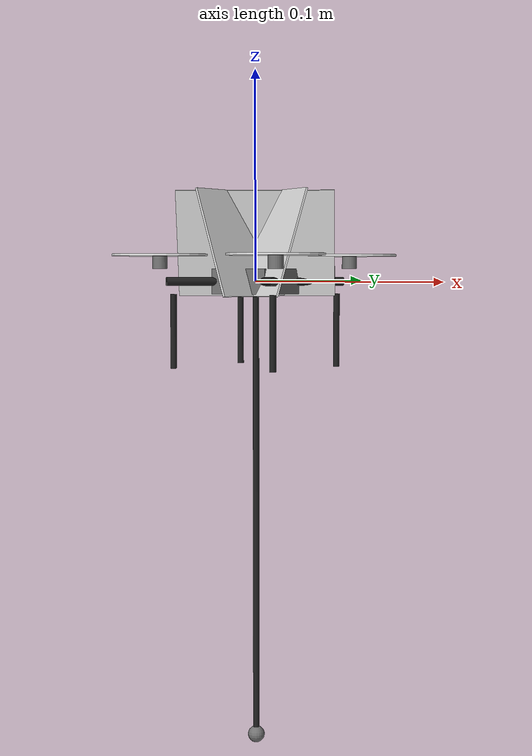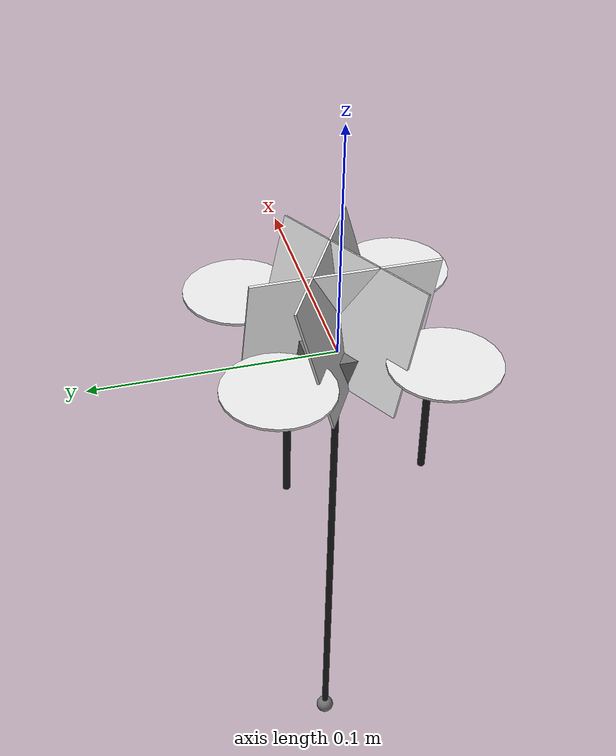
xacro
<?xml version="1.0"?>
<robot xmlns:xacro="http://www.ros.org/wiki/xacro" name="quadcopter">

  <!-- ============================== parameters ============================= -->
  <!-- Geometry (SI units) -->
  <xacro:property name="wheelbase_diag" value="0.092"/>
  <xacro:property name="arm_length" value="${wheelbase_diag / 2.0}"/>
  <xacro:property name="motor_xy" value="0.032527"/>
  <xacro:property name="body_x" value="0.030"/>
  <xacro:property name="body_y" value="0.030"/>
  <xacro:property name="body_z" value="0.012"/>
  <xacro:property name="motor_radius" value="0.0035"/>
  <xacro:property name="motor_height" value="0.006"/>
  <xacro:property name="prop_radius" value="0.0225"/>
  <xacro:property name="prop_thickness" value="0.001"/>
  <xacro:property name="leg_length" value="0.035"/>
  <xacro:property name="leg_radius" value="0.0015"/>
  <xacro:property name="arm_radius" value="0.002"/>
  <xacro:property name="motor_z" value="${body_z / 2.0 + motor_height / 2.0}"/>

  <!-- Hopcopter passive telescopic leg (paper Eq. 7 / table S2) -->
  <xacro:property name="leg_length0" value="0.22"/>
  <xacro:property name="leg_preload" value="0.0197"/>
  <xacro:property name="mass_total" value="0.0348"/>
  <xacro:property name="foot_mass" value="0.001"/>
  <xacro:property name="k_over_m" value="5000.0"/>
  <xacro:property name="f_c_over_m" value="12.7"/>
  <xacro:property name="spring_k" value="${k_over_m * mass_total}"/>
  <xacro:property name="spring_f_c" value="${f_c_over_m * mass_total}"/>

  <!-- Mass (kg); total = 0.0348 = base + 4 props + foot -->
  <xacro:property name="mass_base"
                  value="${mass_total - 4.0 * mass_prop_link - foot_mass}"/>
  <xacro:property name="mass_prop_link" value="0.00275"/>

  <xacro:property name="max_rot_velocity" value="2200.0"/>
  <xacro:property name="motor_constant" value="3.0e-8"/>
  <xacro:property name="moment_constant" value="0.006"/>
  <xacro:property name="time_constant_up" value="0.02"/>
  <xacro:property name="time_constant_down" value="0.04"/>

  <!-- Arm visual yaw for each diagonal direction -->
  <xacro:property name="yaw_0" value="0.7853981633974483"/>
  <xacro:property name="yaw_1" value="2.356194490192345"/>
  <xacro:property name="yaw_2" value="3.9269908169872414"/>
  <xacro:property name="yaw_3" value="5.497787143782138"/>

  <!-- ================================ macros =============================== -->
  <xacro:macro name="box_inertia" params="mass x y z">
    <inertial>
      <mass value="${mass}"/>
      <inertia
        ixx="${mass / 12.0 * (y * y + z * z)}"
        ixy="0.0" ixz="0.0"
        iyy="${mass / 12.0 * (x * x + z * z)}"
        iyz="0.0"
        izz="${mass / 12.0 * (x * x + y * y)}"/>
    </inertial>
  </xacro:macro>

  <xacro:macro name="cylinder_inertia" params="mass radius length">
    <inertial>
      <mass value="${mass}"/>
      <inertia
        ixx="${mass / 12.0 * (3.0 * radius * radius + length * length)}"
        ixy="0.0" ixz="0.0"
        iyy="${mass / 12.0 * (3.0 * radius * radius + length * length)}"
        iyz="0.0"
        izz="${mass * radius * radius / 2.0}"/>
    </inertial>
  </xacro:macro>

  <!-- Arm visual: thin cylinder from body center towards motor (x, y) -->
  <xacro:macro name="arm_visual" params="x y yaw">
    <visual name="arm_${yaw}">
      <origin xyz="${x / 2.0} ${y / 2.0} 0" rpy="0 ${pi / 2.0} ${yaw}"/>
      <geometry>
        <cylinder radius="${arm_radius}" length="${arm_length - 0.006}"/>
      </geometry>
      <material name="black"/>
    </visual>
  </xacro:macro>

  <!-- Leg: vertical cylinder below the body corner (visual + collision) -->
  <xacro:macro name="leg" params="x y">
    <visual name="leg_${x}_${y}">
      <origin xyz="${x} ${y} ${-body_z / 2.0 - leg_length / 2.0}"
              rpy="0 0 0"/>
      <geometry>
        <cylinder radius="${leg_radius}" length="${leg_length}"/>
      </geometry>
      <material name="black"/>
    </visual>
    <collision name="leg_${x}_${y}">
      <origin xyz="${x} ${y} ${-body_z / 2.0 - leg_length / 2.0}"
              rpy="0 0 0"/>
      <geometry>
        <cylinder radius="${leg_radius}" length="${leg_length}"/>
      </geometry>
    </collision>
  </xacro:macro>

  <!-- One motor + propeller link and its continuous revolute joint -->
  <xacro:macro name="motor_prop" params="idx x y yaw turning">
    <link name="prop${idx}_link">
      <visual name="motor">
        <origin xyz="0 0 0" rpy="0 0 0"/>
        <geometry>
          <cylinder radius="${motor_radius}" length="${motor_height}"/>
        </geometry>
        <material name="gray"/>
      </visual>
      <visual name="propeller">
        <origin xyz="0 0 ${motor_height / 2.0 + prop_thickness / 2.0}"
                rpy="0 0 0"/>
        <geometry>
          <cylinder radius="${prop_radius}" length="${prop_thickness}"/>
        </geometry>
        <material name="prop_white"/>
      </visual>
      <collision name="motor">
        <origin xyz="0 0 0" rpy="0 0 0"/>
        <geometry>
          <cylinder radius="${motor_radius}" length="${motor_height}"/>
        </geometry>
      </collision>
      <xacro:cylinder_inertia mass="${mass_prop_link}"
                              radius="${motor_radius}"
                              length="${motor_height}"/>
    </link>

    <joint name="prop${idx}_joint" type="continuous">
      <parent link="base_link"/>
      <child link="prop${idx}_link"/>
      <origin xyz="${x} ${y} ${motor_z}" rpy="0 0 0"/>
      <axis xyz="0 0 1"/>
      <dynamics damping="0.0" friction="0.0"/>
    </joint>

    <gazebo>
      <plugin
        filename="gz-sim-multicopter-motor-model-system"
        name="gz::sim::systems::MulticopterMotorModel">
        <robotNamespace>quadcopter</robotNamespace>
        <jointName>prop${idx}_joint</jointName>
        <linkName>prop${idx}_link</linkName>
        <turningDirection>${turning}</turningDirection>
        <timeConstantUp>${time_constant_up}</timeConstantUp>
        <timeConstantDown>${time_constant_down}</timeConstantDown>
        <maxRotVelocity>${max_rot_velocity}</maxRotVelocity>
        <motorConstant>${motor_constant}</motorConstant>
        <momentConstant>${moment_constant}</momentConstant>
        <commandSubTopic>gazebo/command/motor_speed</commandSubTopic>
        <actuator_number>${idx}</actuator_number>
        <rotorDragCoefficient>0</rotorDragCoefficient>
        <rollingMomentCoefficient>0</rollingMomentCoefficient>
        <motorSpeedPubTopic>motor_speed/${idx}</motorSpeedPubTopic>
        <rotorVelocitySlowdownSim>1</rotorVelocitySlowdownSim>
        <motorType>velocity</motorType>
      </plugin>
    </gazebo>
  </xacro:macro>

  <xacro:macro name="stabilizer_plate" params="idx angle">
    <visual name="stab_plate_${idx}">
      <origin xyz="0 0 ${body_z / 2.0 + 0.012}" rpy="0 ${pi / 2.0 - 0.30} ${angle}"/>
      <geometry>
        <box size="0.052 0.075 0.001"/>
      </geometry>
      <material name="prop_white"/>
    </visual>
  </xacro:macro>

  <!-- ================================ links ================================ -->
  <material name="black">
    <color rgba="0.12 0.12 0.12 1.0"/>
  </material>
  <material name="gray">
    <color rgba="0.45 0.45 0.45 1.0"/>
  </material>
  <material name="prop_white">
    <color rgba="0.90 0.90 0.90 1.0"/>
  </material>

  <link name="base_link">
    <visual name="body">
      <origin xyz="0 0 0" rpy="0 0 0"/>
      <geometry>
        <box size="${body_x} ${body_y} ${body_z}"/>
      </geometry>
      <material name="gray"/>
    </visual>
    <xacro:arm_visual x="${motor_xy}" y="${motor_xy}" yaw="${yaw_0}"/>
    <xacro:arm_visual x="${-motor_xy}" y="${motor_xy}" yaw="${yaw_1}"/>
    <xacro:arm_visual x="${-motor_xy}" y="${-motor_xy}" yaw="${yaw_2}"/>
    <xacro:arm_visual x="${motor_xy}" y="${-motor_xy}" yaw="${yaw_3}"/>
    <xacro:leg x="0.028" y="0.028"/>
    <xacro:leg x="-0.028" y="0.028"/>
    <xacro:leg x="-0.028" y="-0.028"/>
    <xacro:leg x="0.028" y="-0.028"/>
    <xacro:stabilizer_plate idx="0" angle="0"/>
    <xacro:stabilizer_plate idx="1" angle="${2.0943951023931953}"/>
    <xacro:stabilizer_plate idx="2" angle="${4.1887902047863905}"/>
    <collision name="body">
      <origin xyz="0 0 0" rpy="0 0 0"/>
      <geometry>
        <box size="${body_x} ${body_y} ${body_z}"/>
      </geometry>
    </collision>
    <xacro:box_inertia mass="${mass_base}" x="${body_x}"
                       y="${body_y}" z="${body_z}"/>
  </link>

  <link name="foot_link">
    <visual name="leg_rod">
      <origin xyz="0 0 ${leg_length0 / 2.0}" rpy="0 0 0"/>
      <geometry>
        <cylinder radius="${leg_radius}" length="${leg_length0}"/>
      </geometry>
      <material name="black"/>
    </visual>
    <visual name="foot_tip">
      <origin xyz="0 0 0" rpy="0 0 0"/>
      <geometry>
        <sphere radius="0.004"/>
      </geometry>
      <material name="gray"/>
    </visual>
    <collision name="foot_tip">
      <origin xyz="0 0 0" rpy="0 0 0"/>
      <geometry>
        <sphere radius="0.004"/>
      </geometry>
    </collision>
    <inertial>
      <mass value="${foot_mass}"/>
      <inertia
        ixx="${0.4 * foot_mass * 0.004 * 0.004}"
        ixy="0.0" ixz="0.0"
        iyy="${0.4 * foot_mass * 0.004 * 0.004}"
        iyz="0.0"
        izz="${0.4 * foot_mass * 0.004 * 0.004}"/>
    </inertial>
  </link>

  <joint name="leg_joint" type="prismatic">
    <parent link="base_link"/>
    <child link="foot_link"/>
    <origin xyz="0 0 ${-leg_length0}" rpy="0 0 0"/>
    <axis xyz="0 0 -1"/>
    <limit lower="-0.16" upper="0.0" effort="100.0" velocity="10.0"/>
    <dynamics damping="0.0" friction="0.0"/>
  </joint>

  <!-- Adjacent rotors spin in opposite directions so roll and yaw torques are
       independent (standard X4 layout: CCW, CW, CCW, CW). -->
  <xacro:motor_prop idx="0" x="${motor_xy}" y="${motor_xy}"
                    yaw="${yaw_0}" turning="ccw"/>
  <xacro:motor_prop idx="1" x="${-motor_xy}" y="${motor_xy}"
                    yaw="${yaw_1}" turning="cw"/>
  <xacro:motor_prop idx="2" x="${-motor_xy}" y="${-motor_xy}"
                    yaw="${yaw_2}" turning="ccw"/>
  <xacro:motor_prop idx="3" x="${motor_xy}" y="${-motor_xy}"
                    yaw="${yaw_3}" turning="cw"/>

  <!-- Publish propeller joint states for RViz / ROS tools -->
  <gazebo>
    <plugin
      filename="gz-sim-joint-state-publisher-system"
      name="gz::sim::systems::JointStatePublisher">
      <update_rate>500</update_rate>
      <joint_name>prop0_joint</joint_name>
      <joint_name>prop1_joint</joint_name>
      <joint_name>prop2_joint</joint_name>
      <joint_name>prop3_joint</joint_name>
      <joint_name>leg_joint</joint_name>
    </plugin>
  </gazebo>

  <!-- Passive spring-damper leg (paper Eq. 7, custom gz-sim system plugin).
       Forces are applied at the physics rate; state is published at 1 kHz. -->
  <gazebo>
    <plugin
      filename="libspring_damper_leg_system.so"
      name="quadcopter_gz_plugins::SpringDamperLegSystem">
      <leg_joint>leg_joint</leg_joint>
      <foot_link>foot_link</foot_link>
      <k>${spring_k}</k>
      <f_c>${spring_f_c}</f_c>
      <l_p>${leg_preload}</l_p>
      <l0>${leg_length0}</l0>
      <vel_eps>0.02</vel_eps>
      <topic>/model/quadcopter/leg_state</topic>
    </plugin>
  </gazebo>

  <gazebo>
    <plugin
      filename="libaerodynamic_stabilizer_system.so"
      name="quadcopter_gz_plugins::AerodynamicStabilizerSystem">
      <link_name>base_link</link_name>
      <rho>1.2</rho>
      <surface>0.0078</surface>
      <k_eff>8.0</k_eff>
      <moment_arm>0.06</moment_arm>
      <speed_eps>0.05</speed_eps>
      <topic>/model/quadcopter/stabilizer_active</topic>
      <diag_topic>/model/quadcopter/stabilizer_state</diag_topic>
    </plugin>
  </gazebo>

  <!-- Publish the model pose (used by the RViz TF pipeline) -->
  <gazebo>
    <plugin
      filename="gz-sim-pose-publisher-system"
      name="gz::sim::systems::PosePublisher">
      <publish_model_pose>true</publish_model_pose>
      <publish_link_pose>false</publish_link_pose>
      <update_frequency>100</update_frequency>
      <static_publisher>false</static_publisher>
    </plugin>
  </gazebo>

  <!-- IMU on the body: quaternion + angular velocity for the attitude loop -->
  <gazebo reference="base_link">
    <sensor name="imu_sensor" type="imu">
      <always_on>1</always_on>
      <update_rate>500</update_rate>
      <visualize>false</visualize>
      <imu>
        <orientation_reference_frame>ENU</orientation_reference_frame>
      </imu>
      <plugin
        filename="gz-sim-imu-system"
        name="gz::sim::systems::Imu"/>
    </sensor>
  </gazebo>

</robot>
